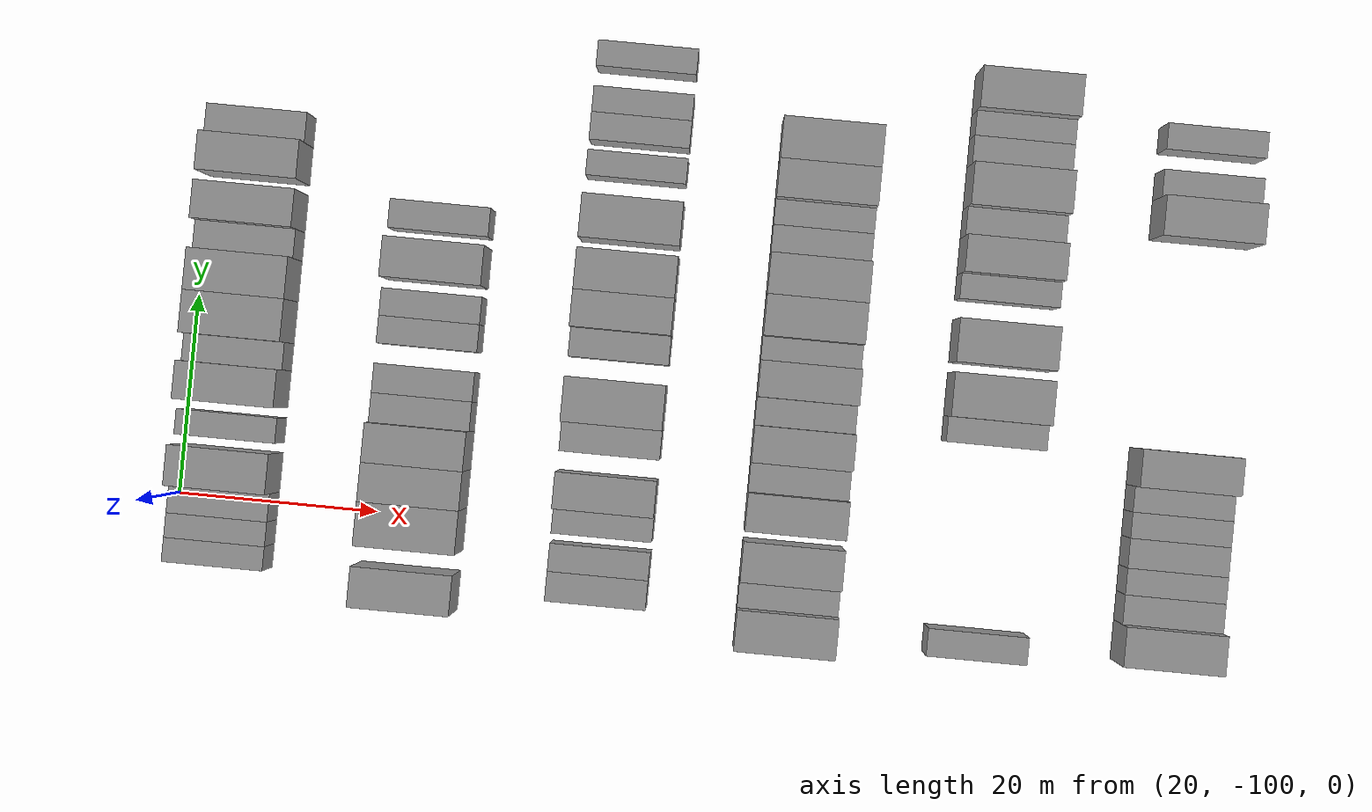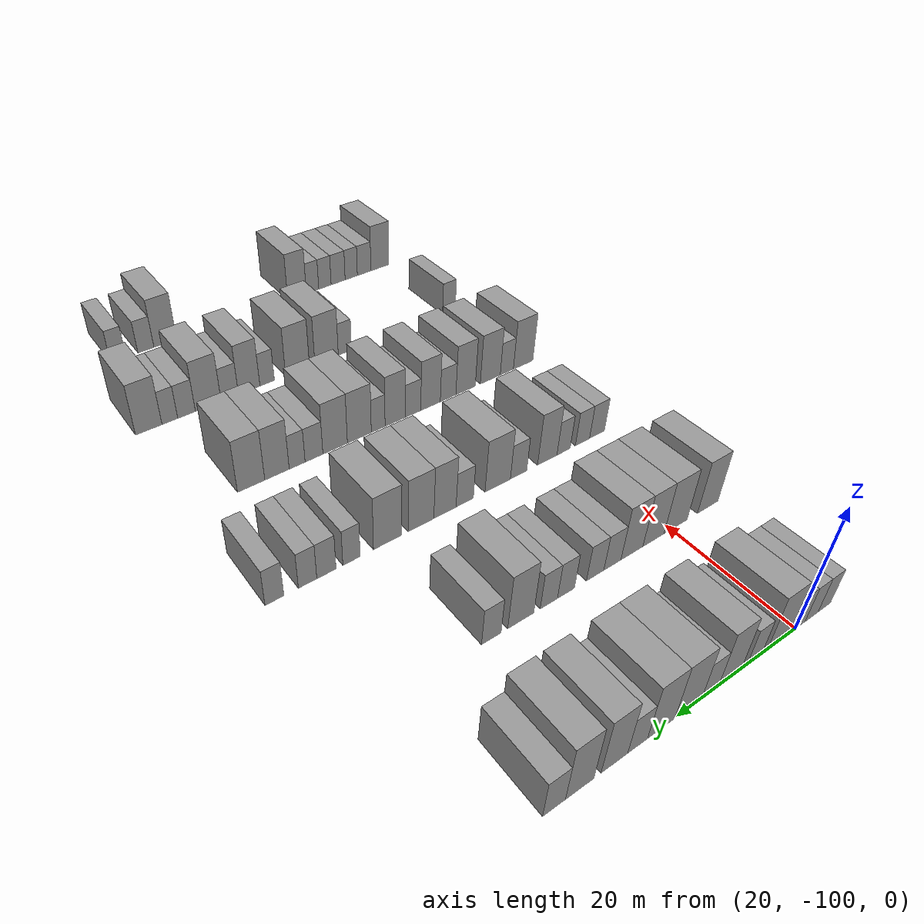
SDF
<sdf version="1.6">
 <world name="default">
  <model name="building_67">
   <static>1</static>
   <pose>25.0000 -105.3900 0 0.000000 0.000000 0.000000</pose>
   <link name="link">
    <pose>0 0 3.00 0 0 0</pose>
    <collision name="collision"><geometry><box><size>10.0000 2.4034 6.0000</size></box></geometry></collision>
    <visual name="visual">
     <cast_shadows>0</cast_shadows>
     <geometry><box><size>10.0000 2.4034 6.0000</size></box></geometry>
     <material>
      <script>
       <uri>model://grey_wall/materials/scripts</uri>
       <uri>model://grey_wall/materials/textures</uri>
       <name>vrc/grey_wall</name>
      </script>
     </material>
    </visual>
   </link>
  </model>
  <model name="building_68">
   <static>1</static>
   <pose>25.0000 -102.9690 0 0.000000 0.000000 0.000000</pose>
   <link name="link">
    <pose>0 0 3.00 0 0 0</pose>
    <collision name="collision"><geometry><box><size>10.0000 2.4385 6.0000</size></box></geometry></collision>
    <visual name="visual">
     <cast_shadows>0</cast_shadows>
     <geometry><box><size>10.0000 2.4385 6.0000</size></box></geometry>
     <material>
      <script>
       <uri>model://grey_wall/materials/scripts</uri>
       <uri>model://grey_wall/materials/textures</uri>
       <name>vrc/grey_wall</name>
      </script>
     </material>
    </visual>
   </link>
  </model>
  <model name="building_69">
   <static>1</static>
   <pose>25.0000 -100.3519 0 0.000000 0.000000 0.000000</pose>
   <link name="link">
    <pose>0 0 3.00 0 0 0</pose>
    <collision name="collision"><geometry><box><size>10.0000 2.7957 6.0000</size></box></geometry></collision>
    <visual name="visual">
     <cast_shadows>0</cast_shadows>
     <geometry><box><size>10.0000 2.7957 6.0000</size></box></geometry>
     <material>
      <script>
       <uri>model://grey_wall/materials/scripts</uri>
       <uri>model://grey_wall/materials/textures</uri>
       <name>vrc/grey_wall</name>
      </script>
     </material>
    </visual>
   </link>
  </model>
  <model name="building_70">
   <static>1</static>
   <pose>25.0000 -96.9507 0 0.000000 0.000000 0.000000</pose>
   <link name="link">
    <pose>0 0 4.50 0 0 0</pose>
    <collision name="collision"><geometry><box><size>10.0000 4.0066 9.0000</size></box></geometry></collision>
    <visual name="visual">
     <cast_shadows>0</cast_shadows>
     <geometry><box><size>10.0000 4.0066 9.0000</size></box></geometry>
     <material>
      <script>
       <uri>model://grey_wall/materials/scripts</uri>
       <uri>model://grey_wall/materials/textures</uri>
       <name>vrc/grey_wall</name>
      </script>
     </material>
    </visual>
   </link>
  </model>
  <model name="building_71">
   <static>1</static>
   <pose>25.0000 -92.6870 0 0.000000 0.000000 0.000000</pose>
   <link name="link">
    <pose>0 0 3.00 0 0 0</pose>
    <collision name="collision"><geometry><box><size>10.0000 2.5209 6.0000</size></box></geometry></collision>
    <visual name="visual">
     <cast_shadows>0</cast_shadows>
     <geometry><box><size>10.0000 2.5209 6.0000</size></box></geometry>
     <material>
      <script>
       <uri>model://grey_wall/materials/scripts</uri>
       <uri>model://grey_wall/materials/textures</uri>
       <name>vrc/grey_wall</name>
      </script>
     </material>
    </visual>
   </link>
  </model>
  <model name="building_72">
   <static>1</static>
   <pose>25.0000 -88.5406 0 0.000000 0.000000 0.000000</pose>
   <link name="link">
    <pose>0 0 4.50 0 0 0</pose>
    <collision name="collision"><geometry><box><size>10.0000 3.7719 9.0000</size></box></geometry></collision>
    <visual name="visual">
     <cast_shadows>0</cast_shadows>
     <geometry><box><size>10.0000 3.7719 9.0000</size></box></geometry>
     <material>
      <script>
       <uri>model://grey_wall/materials/scripts</uri>
       <uri>model://grey_wall/materials/textures</uri>
       <name>vrc/grey_wall</name>
      </script>
     </material>
    </visual>
   </link>
  </model>
  <model name="building_73">
   <static>1</static>
   <pose>25.0000 -85.2821 0 0.000000 0.000000 0.000000</pose>
   <link name="link">
    <pose>0 0 3.00 0 0 0</pose>
    <collision name="collision"><geometry><box><size>10.0000 2.7451 6.0000</size></box></geometry></collision>
    <visual name="visual">
     <cast_shadows>0</cast_shadows>
     <geometry><box><size>10.0000 2.7451 6.0000</size></box></geometry>
     <material>
      <script>
       <uri>model://grey_wall/materials/scripts</uri>
       <uri>model://grey_wall/materials/textures</uri>
       <name>vrc/grey_wall</name>
      </script>
     </material>
    </visual>
   </link>
  </model>
  <model name="building_74">
   <static>1</static>
   <pose>25.0000 -81.8021 0 0.000000 0.000000 0.000000</pose>
   <link name="link">
    <pose>0 0 4.50 0 0 0</pose>
    <collision name="collision"><geometry><box><size>10.0000 4.2150 9.0000</size></box></geometry></collision>
    <visual name="visual">
     <cast_shadows>0</cast_shadows>
     <geometry><box><size>10.0000 4.2150 9.0000</size></box></geometry>
     <material>
      <script>
       <uri>model://grey_wall/materials/scripts</uri>
       <uri>model://grey_wall/materials/textures</uri>
       <name>vrc/grey_wall</name>
      </script>
     </material>
    </visual>
   </link>
  </model>
  <model name="building_75">
   <static>1</static>
   <pose>25.0000 -77.6193 0 0.000000 0.000000 0.000000</pose>
   <link name="link">
    <pose>0 0 4.50 0 0 0</pose>
    <collision name="collision"><geometry><box><size>10.0000 4.1505 9.0000</size></box></geometry></collision>
    <visual name="visual">
     <cast_shadows>0</cast_shadows>
     <geometry><box><size>10.0000 4.1505 9.0000</size></box></geometry>
     <material>
      <script>
       <uri>model://grey_wall/materials/scripts</uri>
       <uri>model://grey_wall/materials/textures</uri>
       <name>vrc/grey_wall</name>
      </script>
     </material>
    </visual>
   </link>
  </model>
  <model name="building_76">
   <static>1</static>
   <pose>25.0000 -74.0915 0 0.000000 0.000000 0.000000</pose>
   <link name="link">
    <pose>0 0 3.00 0 0 0</pose>
    <collision name="collision"><geometry><box><size>10.0000 2.9051 6.0000</size></box></geometry></collision>
    <visual name="visual">
     <cast_shadows>0</cast_shadows>
     <geometry><box><size>10.0000 2.9051 6.0000</size></box></geometry>
     <material>
      <script>
       <uri>model://grey_wall/materials/scripts</uri>
       <uri>model://grey_wall/materials/textures</uri>
       <name>vrc/grey_wall</name>
      </script>
     </material>
    </visual>
   </link>
  </model>
  <model name="building_77">
   <static>1</static>
   <pose>25.0000 -70.7532 0 0.000000 0.000000 0.000000</pose>
   <link name="link">
    <pose>0 0 4.50 0 0 0</pose>
    <collision name="collision"><geometry><box><size>10.0000 3.7714 9.0000</size></box></geometry></collision>
    <visual name="visual">
     <cast_shadows>0</cast_shadows>
     <geometry><box><size>10.0000 3.7714 9.0000</size></box></geometry>
     <material>
      <script>
       <uri>model://grey_wall/materials/scripts</uri>
       <uri>model://grey_wall/materials/textures</uri>
       <name>vrc/grey_wall</name>
      </script>
     </material>
    </visual>
   </link>
  </model>
  <model name="building_78">
   <static>1</static>
   <pose>25.0000 -65.9466 0 0.000000 0.000000 0.000000</pose>
   <link name="link">
    <pose>0 0 4.50 0 0 0</pose>
    <collision name="collision"><geometry><box><size>10.0000 3.8419 9.0000</size></box></geometry></collision>
    <visual name="visual">
     <cast_shadows>0</cast_shadows>
     <geometry><box><size>10.0000 3.8419 9.0000</size></box></geometry>
     <material>
      <script>
       <uri>model://grey_wall/materials/scripts</uri>
       <uri>model://grey_wall/materials/textures</uri>
       <name>vrc/grey_wall</name>
      </script>
     </material>
    </visual>
   </link>
  </model>
  <model name="building_79">
   <static>1</static>
   <pose>25.0000 -62.5279 0 0.000000 0.000000 0.000000</pose>
   <link name="link">
    <pose>0 0 3.00 0 0 0</pose>
    <collision name="collision"><geometry><box><size>10.0000 2.9954 6.0000</size></box></geometry></collision>
    <visual name="visual">
     <cast_shadows>0</cast_shadows>
     <geometry><box><size>10.0000 2.9954 6.0000</size></box></geometry>
     <material>
      <script>
       <uri>model://grey_wall/materials/scripts</uri>
       <uri>model://grey_wall/materials/textures</uri>
       <name>vrc/grey_wall</name>
      </script>
     </material>
    </visual>
   </link>
  </model>
  <model name="building_234">
   <static>1</static>
   <pose>44.0000 -107.0728 0 0.000000 0.000000 0.000000</pose>
   <link name="link">
    <pose>0 0 4.50 0 0 0</pose>
    <collision name="collision"><geometry><box><size>10.0000 4.0145 9.0000</size></box></geometry></collision>
    <visual name="visual">
     <cast_shadows>0</cast_shadows>
     <geometry><box><size>10.0000 4.0145 9.0000</size></box></geometry>
     <material>
      <script>
       <uri>model://grey_wall/materials/scripts</uri>
       <uri>model://grey_wall/materials/textures</uri>
       <name>vrc/grey_wall</name>
      </script>
     </material>
    </visual>
   </link>
  </model>
  <model name="building_235">
   <static>1</static>
   <pose>44.0000 -100.8949 0 0.000000 0.000000 0.000000</pose>
   <link name="link">
    <pose>0 0 4.50 0 0 0</pose>
    <collision name="collision"><geometry><box><size>10.0000 4.3414 9.0000</size></box></geometry></collision>
    <visual name="visual">
     <cast_shadows>0</cast_shadows>
     <geometry><box><size>10.0000 4.3414 9.0000</size></box></geometry>
     <material>
      <script>
       <uri>model://grey_wall/materials/scripts</uri>
       <uri>model://grey_wall/materials/textures</uri>
       <name>vrc/grey_wall</name>
      </script>
     </material>
    </visual>
   </link>
  </model>
  <model name="building_236">
   <static>1</static>
   <pose>44.0000 -96.7959 0 0.000000 0.000000 0.000000</pose>
   <link name="link">
    <pose>0 0 4.50 0 0 0</pose>
    <collision name="collision"><geometry><box><size>10.0000 3.8564 9.0000</size></box></geometry></collision>
    <visual name="visual">
     <cast_shadows>0</cast_shadows>
     <geometry><box><size>10.0000 3.8564 9.0000</size></box></geometry>
     <material>
      <script>
       <uri>model://grey_wall/materials/scripts</uri>
       <uri>model://grey_wall/materials/textures</uri>
       <name>vrc/grey_wall</name>
      </script>
     </material>
    </visual>
   </link>
  </model>
  <model name="building_237">
   <static>1</static>
   <pose>44.0000 -92.9147 0 0.000000 0.000000 0.000000</pose>
   <link name="link">
    <pose>0 0 4.50 0 0 0</pose>
    <collision name="collision"><geometry><box><size>10.0000 3.9060 9.0000</size></box></geometry></collision>
    <visual name="visual">
     <cast_shadows>0</cast_shadows>
     <geometry><box><size>10.0000 3.9060 9.0000</size></box></geometry>
     <material>
      <script>
       <uri>model://grey_wall/materials/scripts</uri>
       <uri>model://grey_wall/materials/textures</uri>
       <name>vrc/grey_wall</name>
      </script>
     </material>
    </visual>
   </link>
  </model>
  <model name="building_238">
   <static>1</static>
   <pose>44.0000 -89.4872 0 0.000000 0.000000 0.000000</pose>
   <link name="link">
    <pose>0 0 3.00 0 0 0</pose>
    <collision name="collision"><geometry><box><size>10.0000 2.9491 6.0000</size></box></geometry></collision>
    <visual name="visual">
     <cast_shadows>0</cast_shadows>
     <geometry><box><size>10.0000 2.9491 6.0000</size></box></geometry>
     <material>
      <script>
       <uri>model://grey_wall/materials/scripts</uri>
       <uri>model://grey_wall/materials/textures</uri>
       <name>vrc/grey_wall</name>
      </script>
     </material>
    </visual>
   </link>
  </model>
  <model name="building_239">
   <static>1</static>
   <pose>44.0000 -86.5484 0 0.000000 0.000000 0.000000</pose>
   <link name="link">
    <pose>0 0 3.00 0 0 0</pose>
    <collision name="collision"><geometry><box><size>10.0000 2.9286 6.0000</size></box></geometry></collision>
    <visual name="visual">
     <cast_shadows>0</cast_shadows>
     <geometry><box><size>10.0000 2.9286 6.0000</size></box></geometry>
     <material>
      <script>
       <uri>model://grey_wall/materials/scripts</uri>
       <uri>model://grey_wall/materials/textures</uri>
       <name>vrc/grey_wall</name>
      </script>
     </material>
    </visual>
   </link>
  </model>
  <model name="building_240">
   <static>1</static>
   <pose>44.0000 -81.7106 0 0.000000 0.000000 0.000000</pose>
   <link name="link">
    <pose>0 0 3.00 0 0 0</pose>
    <collision name="collision"><geometry><box><size>10.0000 2.7469 6.0000</size></box></geometry></collision>
    <visual name="visual">
     <cast_shadows>0</cast_shadows>
     <geometry><box><size>10.0000 2.7469 6.0000</size></box></geometry>
     <material>
      <script>
       <uri>model://grey_wall/materials/scripts</uri>
       <uri>model://grey_wall/materials/textures</uri>
       <name>vrc/grey_wall</name>
      </script>
     </material>
    </visual>
   </link>
  </model>
  <model name="building_241">
   <static>1</static>
   <pose>44.0000 -78.9650 0 0.000000 0.000000 0.000000</pose>
   <link name="link">
    <pose>0 0 3.00 0 0 0</pose>
    <collision name="collision"><geometry><box><size>10.0000 2.7444 6.0000</size></box></geometry></collision>
    <visual name="visual">
     <cast_shadows>0</cast_shadows>
     <geometry><box><size>10.0000 2.7444 6.0000</size></box></geometry>
     <material>
      <script>
       <uri>model://grey_wall/materials/scripts</uri>
       <uri>model://grey_wall/materials/textures</uri>
       <name>vrc/grey_wall</name>
      </script>
     </material>
    </visual>
   </link>
  </model>
  <model name="building_242">
   <static>1</static>
   <pose>44.0000 -74.5951 0 0.000000 0.000000 0.000000</pose>
   <link name="link">
    <pose>0 0 4.50 0 0 0</pose>
    <collision name="collision"><geometry><box><size>10.0000 3.9955 9.0000</size></box></geometry></collision>
    <visual name="visual">
     <cast_shadows>0</cast_shadows>
     <geometry><box><size>10.0000 3.9955 9.0000</size></box></geometry>
     <material>
      <script>
       <uri>model://grey_wall/materials/scripts</uri>
       <uri>model://grey_wall/materials/textures</uri>
       <name>vrc/grey_wall</name>
      </script>
     </material>
    </visual>
   </link>
  </model>
  <model name="building_243">
   <static>1</static>
   <pose>44.0000 -70.1585 0 0.000000 0.000000 0.000000</pose>
   <link name="link">
    <pose>0 0 3.00 0 0 0</pose>
    <collision name="collision"><geometry><box><size>10.0000 2.8778 6.0000</size></box></geometry></collision>
    <visual name="visual">
     <cast_shadows>0</cast_shadows>
     <geometry><box><size>10.0000 2.8778 6.0000</size></box></geometry>
     <material>
      <script>
       <uri>model://grey_wall/materials/scripts</uri>
       <uri>model://grey_wall/materials/textures</uri>
       <name>vrc/grey_wall</name>
      </script>
     </material>
    </visual>
   </link>
  </model>
  <model name="building_396">
   <static>1</static>
   <pose>63.0000 -105.3975 0 0.000000 0.000000 0.000000</pose>
   <link name="link">
    <pose>0 0 3.00 0 0 0</pose>
    <collision name="collision"><geometry><box><size>10.0000 2.9464 6.0000</size></box></geometry></collision>
    <visual name="visual">
     <cast_shadows>0</cast_shadows>
     <geometry><box><size>10.0000 2.9464 6.0000</size></box></geometry>
     <material>
      <script>
       <uri>model://grey_wall/materials/scripts</uri>
       <uri>model://grey_wall/materials/textures</uri>
       <name>vrc/grey_wall</name>
      </script>
     </material>
    </visual>
   </link>
  </model>
  <model name="building_397">
   <static>1</static>
   <pose>63.0000 -102.5312 0 0.000000 0.000000 0.000000</pose>
   <link name="link">
    <pose>0 0 3.00 0 0 0</pose>
    <collision name="collision"><geometry><box><size>10.0000 2.7861 6.0000</size></box></geometry></collision>
    <visual name="visual">
     <cast_shadows>0</cast_shadows>
     <geometry><box><size>10.0000 2.7861 6.0000</size></box></geometry>
     <material>
      <script>
       <uri>model://grey_wall/materials/scripts</uri>
       <uri>model://grey_wall/materials/textures</uri>
       <name>vrc/grey_wall</name>
      </script>
     </material>
    </visual>
   </link>
  </model>
  <model name="building_398">
   <static>1</static>
   <pose>63.0000 -98.8743 0 0.000000 0.000000 0.000000</pose>
   <link name="link">
    <pose>0 0 3.00 0 0 0</pose>
    <collision name="collision"><geometry><box><size>10.0000 2.5277 6.0000</size></box></geometry></collision>
    <visual name="visual">
     <cast_shadows>0</cast_shadows>
     <geometry><box><size>10.0000 2.5277 6.0000</size></box></geometry>
     <material>
      <script>
       <uri>model://grey_wall/materials/scripts</uri>
       <uri>model://grey_wall/materials/textures</uri>
       <name>vrc/grey_wall</name>
      </script>
     </material>
    </visual>
   </link>
  </model>
  <model name="building_399">
   <static>1</static>
   <pose>63.0000 -95.7951 0 0.000000 0.000000 0.000000</pose>
   <link name="link">
    <pose>0 0 4.50 0 0 0</pose>
    <collision name="collision"><geometry><box><size>10.0000 3.6306 9.0000</size></box></geometry></collision>
    <visual name="visual">
     <cast_shadows>0</cast_shadows>
     <geometry><box><size>10.0000 3.6306 9.0000</size></box></geometry>
     <material>
      <script>
       <uri>model://grey_wall/materials/scripts</uri>
       <uri>model://grey_wall/materials/textures</uri>
       <name>vrc/grey_wall</name>
      </script>
     </material>
    </visual>
   </link>
  </model>
  <model name="building_400">
   <static>1</static>
   <pose>63.0000 -90.5098 0 0.000000 0.000000 0.000000</pose>
   <link name="link">
    <pose>0 0 3.00 0 0 0</pose>
    <collision name="collision"><geometry><box><size>10.0000 2.9401 6.0000</size></box></geometry></collision>
    <visual name="visual">
     <cast_shadows>0</cast_shadows>
     <geometry><box><size>10.0000 2.9401 6.0000</size></box></geometry>
     <material>
      <script>
       <uri>model://grey_wall/materials/scripts</uri>
       <uri>model://grey_wall/materials/textures</uri>
       <name>vrc/grey_wall</name>
      </script>
     </material>
    </visual>
   </link>
  </model>
  <model name="building_401">
   <static>1</static>
   <pose>63.0000 -86.8113 0 0.000000 0.000000 0.000000</pose>
   <link name="link">
    <pose>0 0 4.50 0 0 0</pose>
    <collision name="collision"><geometry><box><size>10.0000 4.4569 9.0000</size></box></geometry></collision>
    <visual name="visual">
     <cast_shadows>0</cast_shadows>
     <geometry><box><size>10.0000 4.4569 9.0000</size></box></geometry>
     <material>
      <script>
       <uri>model://grey_wall/materials/scripts</uri>
       <uri>model://grey_wall/materials/textures</uri>
       <name>vrc/grey_wall</name>
      </script>
     </material>
    </visual>
   </link>
  </model>
  <model name="building_402">
   <static>1</static>
   <pose>63.0000 -81.1262 0 0.000000 0.000000 0.000000</pose>
   <link name="link">
    <pose>0 0 3.00 0 0 0</pose>
    <collision name="collision"><geometry><box><size>10.0000 2.9134 6.0000</size></box></geometry></collision>
    <visual name="visual">
     <cast_shadows>0</cast_shadows>
     <geometry><box><size>10.0000 2.9134 6.0000</size></box></geometry>
     <material>
      <script>
       <uri>model://grey_wall/materials/scripts</uri>
       <uri>model://grey_wall/materials/textures</uri>
       <name>vrc/grey_wall</name>
      </script>
     </material>
    </visual>
   </link>
  </model>
  <model name="building_403">
   <static>1</static>
   <pose>63.0000 -77.8367 0 0.000000 0.000000 0.000000</pose>
   <link name="link">
    <pose>0 0 4.50 0 0 0</pose>
    <collision name="collision"><geometry><box><size>10.0000 3.6655 9.0000</size></box></geometry></collision>
    <visual name="visual">
     <cast_shadows>0</cast_shadows>
     <geometry><box><size>10.0000 3.6655 9.0000</size></box></geometry>
     <material>
      <script>
       <uri>model://grey_wall/materials/scripts</uri>
       <uri>model://grey_wall/materials/textures</uri>
       <name>vrc/grey_wall</name>
      </script>
     </material>
    </visual>
   </link>
  </model>
  <model name="building_404">
   <static>1</static>
   <pose>63.0000 -73.9444 0 0.000000 0.000000 0.000000</pose>
   <link name="link">
    <pose>0 0 4.50 0 0 0</pose>
    <collision name="collision"><geometry><box><size>10.0000 4.1192 9.0000</size></box></geometry></collision>
    <visual name="visual">
     <cast_shadows>0</cast_shadows>
     <geometry><box><size>10.0000 4.1192 9.0000</size></box></geometry>
     <material>
      <script>
       <uri>model://grey_wall/materials/scripts</uri>
       <uri>model://grey_wall/materials/textures</uri>
       <name>vrc/grey_wall</name>
      </script>
     </material>
    </visual>
   </link>
  </model>
  <model name="building_405">
   <static>1</static>
   <pose>63.0000 -68.7126 0 0.000000 0.000000 0.000000</pose>
   <link name="link">
    <pose>0 0 4.50 0 0 0</pose>
    <collision name="collision"><geometry><box><size>10.0000 4.3445 9.0000</size></box></geometry></collision>
    <visual name="visual">
     <cast_shadows>0</cast_shadows>
     <geometry><box><size>10.0000 4.3445 9.0000</size></box></geometry>
     <material>
      <script>
       <uri>model://grey_wall/materials/scripts</uri>
       <uri>model://grey_wall/materials/textures</uri>
       <name>vrc/grey_wall</name>
      </script>
     </material>
    </visual>
   </link>
  </model>
  <model name="building_406">
   <static>1</static>
   <pose>63.0000 -63.2694 0 0.000000 0.000000 0.000000</pose>
   <link name="link">
    <pose>0 0 3.00 0 0 0</pose>
    <collision name="collision"><geometry><box><size>10.0000 2.5420 6.0000</size></box></geometry></collision>
    <visual name="visual">
     <cast_shadows>0</cast_shadows>
     <geometry><box><size>10.0000 2.5420 6.0000</size></box></geometry>
     <material>
      <script>
       <uri>model://grey_wall/materials/scripts</uri>
       <uri>model://grey_wall/materials/textures</uri>
       <name>vrc/grey_wall</name>
      </script>
     </material>
    </visual>
   </link>
  </model>
  <model name="building_407">
   <static>1</static>
   <pose>63.0000 -59.6215 0 0.000000 0.000000 0.000000</pose>
   <link name="link">
    <pose>0 0 3.00 0 0 0</pose>
    <collision name="collision"><geometry><box><size>10.0000 2.7538 6.0000</size></box></geometry></collision>
    <visual name="visual">
     <cast_shadows>0</cast_shadows>
     <geometry><box><size>10.0000 2.7538 6.0000</size></box></geometry>
     <material>
      <script>
       <uri>model://grey_wall/materials/scripts</uri>
       <uri>model://grey_wall/materials/textures</uri>
       <name>vrc/grey_wall</name>
      </script>
     </material>
    </visual>
   </link>
  </model>
  <model name="building_408">
   <static>1</static>
   <pose>63.0000 -56.9504 0 0.000000 0.000000 0.000000</pose>
   <link name="link">
    <pose>0 0 3.00 0 0 0</pose>
    <collision name="collision"><geometry><box><size>10.0000 2.5882 6.0000</size></box></geometry></collision>
    <visual name="visual">
     <cast_shadows>0</cast_shadows>
     <geometry><box><size>10.0000 2.5882 6.0000</size></box></geometry>
     <material>
      <script>
       <uri>model://grey_wall/materials/scripts</uri>
       <uri>model://grey_wall/materials/textures</uri>
       <name>vrc/grey_wall</name>
      </script>
     </material>
    </visual>
   </link>
  </model>
  <model name="building_409">
   <static>1</static>
   <pose>63.0000 -52.3751 0 0.000000 0.000000 0.000000</pose>
   <link name="link">
    <pose>0 0 3.00 0 0 0</pose>
    <collision name="collision"><geometry><box><size>10.0000 2.5624 6.0000</size></box></geometry></collision>
    <visual name="visual">
     <cast_shadows>0</cast_shadows>
     <geometry><box><size>10.0000 2.5624 6.0000</size></box></geometry>
     <material>
      <script>
       <uri>model://grey_wall/materials/scripts</uri>
       <uri>model://grey_wall/materials/textures</uri>
       <name>vrc/grey_wall</name>
      </script>
     </material>
    </visual>
   </link>
  </model>
  <model name="building_574">
   <static>1</static>
   <pose>82.0000 -107.7302 0 0.000000 0.000000 0.000000</pose>
   <link name="link">
    <pose>0 0 4.50 0 0 0</pose>
    <collision name="collision"><geometry><box><size>10.0000 4.0585 9.0000</size></box></geometry></collision>
    <visual name="visual">
     <cast_shadows>0</cast_shadows>
     <geometry><box><size>10.0000 4.0585 9.0000</size></box></geometry>
     <material>
      <script>
       <uri>model://grey_wall/materials/scripts</uri>
       <uri>model://grey_wall/materials/textures</uri>
       <name>vrc/grey_wall</name>
      </script>
     </material>
    </visual>
   </link>
  </model>
  <model name="building_575">
   <static>1</static>
   <pose>82.0000 -104.3540 0 0.000000 0.000000 0.000000</pose>
   <link name="link">
    <pose>0 0 3.00 0 0 0</pose>
    <collision name="collision"><geometry><box><size>10.0000 2.6939 6.0000</size></box></geometry></collision>
    <visual name="visual">
     <cast_shadows>0</cast_shadows>
     <geometry><box><size>10.0000 2.6939 6.0000</size></box></geometry>
     <material>
      <script>
       <uri>model://grey_wall/materials/scripts</uri>
       <uri>model://grey_wall/materials/textures</uri>
       <name>vrc/grey_wall</name>
      </script>
     </material>
    </visual>
   </link>
  </model>
  <model name="building_576">
   <static>1</static>
   <pose>82.0000 -101.0082 0 0.000000 0.000000 0.000000</pose>
   <link name="link">
    <pose>0 0 4.50 0 0 0</pose>
    <collision name="collision"><geometry><box><size>10.0000 3.9977 9.0000</size></box></geometry></collision>
    <visual name="visual">
     <cast_shadows>0</cast_shadows>
     <geometry><box><size>10.0000 3.9977 9.0000</size></box></geometry>
     <material>
      <script>
       <uri>model://grey_wall/materials/scripts</uri>
       <uri>model://grey_wall/materials/textures</uri>
       <name>vrc/grey_wall</name>
      </script>
     </material>
    </visual>
   </link>
  </model>
  <model name="building_577">
   <static>1</static>
   <pose>82.0000 -96.1224 0 0.000000 0.000000 0.000000</pose>
   <link name="link">
    <pose>0 0 4.50 0 0 0</pose>
    <collision name="collision"><geometry><box><size>10.0000 3.7740 9.0000</size></box></geometry></collision>
    <visual name="visual">
     <cast_shadows>0</cast_shadows>
     <geometry><box><size>10.0000 3.7740 9.0000</size></box></geometry>
     <material>
      <script>
       <uri>model://grey_wall/materials/scripts</uri>
       <uri>model://grey_wall/materials/textures</uri>
       <name>vrc/grey_wall</name>
      </script>
     </material>
    </visual>
   </link>
  </model>
  <model name="building_578">
   <static>1</static>
   <pose>82.0000 -92.7496 0 0.000000 0.000000 0.000000</pose>
   <link name="link">
    <pose>0 0 3.00 0 0 0</pose>
    <collision name="collision"><geometry><box><size>10.0000 2.9716 6.0000</size></box></geometry></collision>
    <visual name="visual">
     <cast_shadows>0</cast_shadows>
     <geometry><box><size>10.0000 2.9716 6.0000</size></box></geometry>
     <material>
      <script>
       <uri>model://grey_wall/materials/scripts</uri>
       <uri>model://grey_wall/materials/textures</uri>
       <name>vrc/grey_wall</name>
      </script>
     </material>
    </visual>
   </link>
  </model>
  <model name="building_579">
   <static>1</static>
   <pose>82.0000 -89.4335 0 0.000000 0.000000 0.000000</pose>
   <link name="link">
    <pose>0 0 4.50 0 0 0</pose>
    <collision name="collision"><geometry><box><size>10.0000 3.6606 9.0000</size></box></geometry></collision>
    <visual name="visual">
     <cast_shadows>0</cast_shadows>
     <geometry><box><size>10.0000 3.6606 9.0000</size></box></geometry>
     <material>
      <script>
       <uri>model://grey_wall/materials/scripts</uri>
       <uri>model://grey_wall/materials/textures</uri>
       <name>vrc/grey_wall</name>
      </script>
     </material>
    </visual>
   </link>
  </model>
  <model name="building_580">
   <static>1</static>
   <pose>82.0000 -86.1973 0 0.000000 0.000000 0.000000</pose>
   <link name="link">
    <pose>0 0 3.00 0 0 0</pose>
    <collision name="collision"><geometry><box><size>10.0000 2.8118 6.0000</size></box></geometry></collision>
    <visual name="visual">
     <cast_shadows>0</cast_shadows>
     <geometry><box><size>10.0000 2.8118 6.0000</size></box></geometry>
     <material>
      <script>
       <uri>model://grey_wall/materials/scripts</uri>
       <uri>model://grey_wall/materials/textures</uri>
       <name>vrc/grey_wall</name>
      </script>
     </material>
    </visual>
   </link>
  </model>
  <model name="building_581">
   <static>1</static>
   <pose>82.0000 -82.9815 0 0.000000 0.000000 0.000000</pose>
   <link name="link">
    <pose>0 0 4.50 0 0 0</pose>
    <collision name="collision"><geometry><box><size>10.0000 3.6198 9.0000</size></box></geometry></collision>
    <visual name="visual">
     <cast_shadows>0</cast_shadows>
     <geometry><box><size>10.0000 3.6198 9.0000</size></box></geometry>
     <material>
      <script>
       <uri>model://grey_wall/materials/scripts</uri>
       <uri>model://grey_wall/materials/textures</uri>
       <name>vrc/grey_wall</name>
      </script>
     </material>
    </visual>
   </link>
  </model>
  <model name="building_582">
   <static>1</static>
   <pose>82.0000 -79.9645 0 0.000000 0.000000 0.000000</pose>
   <link name="link">
    <pose>0 0 3.00 0 0 0</pose>
    <collision name="collision"><geometry><box><size>10.0000 2.4142 6.0000</size></box></geometry></collision>
    <visual name="visual">
     <cast_shadows>0</cast_shadows>
     <geometry><box><size>10.0000 2.4142 6.0000</size></box></geometry>
     <material>
      <script>
       <uri>model://grey_wall/materials/scripts</uri>
       <uri>model://grey_wall/materials/textures</uri>
       <name>vrc/grey_wall</name>
      </script>
     </material>
    </visual>
   </link>
  </model>
  <model name="building_583">
   <static>1</static>
   <pose>82.0000 -76.7062 0 0.000000 0.000000 0.000000</pose>
   <link name="link">
    <pose>0 0 4.50 0 0 0</pose>
    <collision name="collision"><geometry><box><size>10.0000 4.1023 9.0000</size></box></geometry></collision>
    <visual name="visual">
     <cast_shadows>0</cast_shadows>
     <geometry><box><size>10.0000 4.1023 9.0000</size></box></geometry>
     <material>
      <script>
       <uri>model://grey_wall/materials/scripts</uri>
       <uri>model://grey_wall/materials/textures</uri>
       <name>vrc/grey_wall</name>
      </script>
     </material>
    </visual>
   </link>
  </model>
  <model name="building_584">
   <static>1</static>
   <pose>82.0000 -72.6085 0 0.000000 0.000000 0.000000</pose>
   <link name="link">
    <pose>0 0 4.50 0 0 0</pose>
    <collision name="collision"><geometry><box><size>10.0000 4.0931 9.0000</size></box></geometry></collision>
    <visual name="visual">
     <cast_shadows>0</cast_shadows>
     <geometry><box><size>10.0000 4.0931 9.0000</size></box></geometry>
     <material>
      <script>
       <uri>model://grey_wall/materials/scripts</uri>
       <uri>model://grey_wall/materials/textures</uri>
       <name>vrc/grey_wall</name>
      </script>
     </material>
    </visual>
   </link>
  </model>
  <model name="building_585">
   <static>1</static>
   <pose>82.0000 -69.1121 0 0.000000 0.000000 0.000000</pose>
   <link name="link">
    <pose>0 0 3.00 0 0 0</pose>
    <collision name="collision"><geometry><box><size>10.0000 2.8999 6.0000</size></box></geometry></collision>
    <visual name="visual">
     <cast_shadows>0</cast_shadows>
     <geometry><box><size>10.0000 2.8999 6.0000</size></box></geometry>
     <material>
      <script>
       <uri>model://grey_wall/materials/scripts</uri>
       <uri>model://grey_wall/materials/textures</uri>
       <name>vrc/grey_wall</name>
      </script>
     </material>
    </visual>
   </link>
  </model>
  <model name="building_586">
   <static>1</static>
   <pose>82.0000 -66.3932 0 0.000000 0.000000 0.000000</pose>
   <link name="link">
    <pose>0 0 3.00 0 0 0</pose>
    <collision name="collision"><geometry><box><size>10.0000 2.5379 6.0000</size></box></geometry></collision>
    <visual name="visual">
     <cast_shadows>0</cast_shadows>
     <geometry><box><size>10.0000 2.5379 6.0000</size></box></geometry>
     <material>
      <script>
       <uri>model://grey_wall/materials/scripts</uri>
       <uri>model://grey_wall/materials/textures</uri>
       <name>vrc/grey_wall</name>
      </script>
     </material>
    </visual>
   </link>
  </model>
  <model name="building_587">
   <static>1</static>
   <pose>82.0000 -63.2085 0 0.000000 0.000000 0.000000</pose>
   <link name="link">
    <pose>0 0 4.50 0 0 0</pose>
    <collision name="collision"><geometry><box><size>10.0000 3.8314 9.0000</size></box></geometry></collision>
    <visual name="visual">
     <cast_shadows>0</cast_shadows>
     <geometry><box><size>10.0000 3.8314 9.0000</size></box></geometry>
     <material>
      <script>
       <uri>model://grey_wall/materials/scripts</uri>
       <uri>model://grey_wall/materials/textures</uri>
       <name>vrc/grey_wall</name>
      </script>
     </material>
    </visual>
   </link>
  </model>
  <model name="building_588">
   <static>1</static>
   <pose>82.0000 -59.2131 0 0.000000 0.000000 0.000000</pose>
   <link name="link">
    <pose>0 0 4.50 0 0 0</pose>
    <collision name="collision"><geometry><box><size>10.0000 4.1595 9.0000</size></box></geometry></collision>
    <visual name="visual">
     <cast_shadows>0</cast_shadows>
     <geometry><box><size>10.0000 4.1595 9.0000</size></box></geometry>
     <material>
      <script>
       <uri>model://grey_wall/materials/scripts</uri>
       <uri>model://grey_wall/materials/textures</uri>
       <name>vrc/grey_wall</name>
      </script>
     </material>
    </visual>
   </link>
  </model>
  <model name="building_747">
   <static>1</static>
   <pose>101.0000 -107.3086 0 0.000000 0.000000 0.000000</pose>
   <link name="link">
    <pose>0 0 3.00 0 0 0</pose>
    <collision name="collision"><geometry><box><size>10.0000 2.7430 6.0000</size></box></geometry></collision>
    <visual name="visual">
     <cast_shadows>0</cast_shadows>
     <geometry><box><size>10.0000 2.7430 6.0000</size></box></geometry>
     <material>
      <script>
       <uri>model://grey_wall/materials/scripts</uri>
       <uri>model://grey_wall/materials/textures</uri>
       <name>vrc/grey_wall</name>
      </script>
     </material>
    </visual>
   </link>
  </model>
  <model name="building_748">
   <static>1</static>
   <pose>101.0000 -86.1704 0 0.000000 0.000000 0.000000</pose>
   <link name="link">
    <pose>0 0 3.00 0 0 0</pose>
    <collision name="collision"><geometry><box><size>10.0000 2.5112 6.0000</size></box></geometry></collision>
    <visual name="visual">
     <cast_shadows>0</cast_shadows>
     <geometry><box><size>10.0000 2.5112 6.0000</size></box></geometry>
     <material>
      <script>
       <uri>model://grey_wall/materials/scripts</uri>
       <uri>model://grey_wall/materials/textures</uri>
       <name>vrc/grey_wall</name>
      </script>
     </material>
    </visual>
   </link>
  </model>
  <model name="building_749">
   <static>1</static>
   <pose>101.0000 -82.7253 0 0.000000 0.000000 0.000000</pose>
   <link name="link">
    <pose>0 0 4.50 0 0 0</pose>
    <collision name="collision"><geometry><box><size>10.0000 4.3790 9.0000</size></box></geometry></collision>
    <visual name="visual">
     <cast_shadows>0</cast_shadows>
     <geometry><box><size>10.0000 4.3790 9.0000</size></box></geometry>
     <material>
      <script>
       <uri>model://grey_wall/materials/scripts</uri>
       <uri>model://grey_wall/materials/textures</uri>
       <name>vrc/grey_wall</name>
      </script>
     </material>
    </visual>
   </link>
  </model>
  <model name="building_750">
   <static>1</static>
   <pose>101.0000 -77.3717 0 0.000000 0.000000 0.000000</pose>
   <link name="link">
    <pose>0 0 4.50 0 0 0</pose>
    <collision name="collision"><geometry><box><size>10.0000 4.3282 9.0000</size></box></geometry></collision>
    <visual name="visual">
     <cast_shadows>0</cast_shadows>
     <geometry><box><size>10.0000 4.3282 9.0000</size></box></geometry>
     <material>
      <script>
       <uri>model://grey_wall/materials/scripts</uri>
       <uri>model://grey_wall/materials/textures</uri>
       <name>vrc/grey_wall</name>
      </script>
     </material>
    </visual>
   </link>
  </model>
  <model name="building_751">
   <static>1</static>
   <pose>101.0000 -71.9371 0 0.000000 0.000000 0.000000</pose>
   <link name="link">
    <pose>0 0 3.00 0 0 0</pose>
    <collision name="collision"><geometry><box><size>10.0000 2.5411 6.0000</size></box></geometry></collision>
    <visual name="visual">
     <cast_shadows>0</cast_shadows>
     <geometry><box><size>10.0000 2.5411 6.0000</size></box></geometry>
     <material>
      <script>
       <uri>model://grey_wall/materials/scripts</uri>
       <uri>model://grey_wall/materials/textures</uri>
       <name>vrc/grey_wall</name>
      </script>
     </material>
    </visual>
   </link>
  </model>
  <model name="building_752">
   <static>1</static>
   <pose>101.0000 -68.8232 0 0.000000 0.000000 0.000000</pose>
   <link name="link">
    <pose>0 0 4.50 0 0 0</pose>
    <collision name="collision"><geometry><box><size>10.0000 3.6865 9.0000</size></box></geometry></collision>
    <visual name="visual">
     <cast_shadows>0</cast_shadows>
     <geometry><box><size>10.0000 3.6865 9.0000</size></box></geometry>
     <material>
      <script>
       <uri>model://grey_wall/materials/scripts</uri>
       <uri>model://grey_wall/materials/textures</uri>
       <name>vrc/grey_wall</name>
      </script>
     </material>
    </visual>
   </link>
  </model>
  <model name="building_753">
   <static>1</static>
   <pose>101.0000 -65.5203 0 0.000000 0.000000 0.000000</pose>
   <link name="link">
    <pose>0 0 3.00 0 0 0</pose>
    <collision name="collision"><geometry><box><size>10.0000 2.9194 6.0000</size></box></geometry></collision>
    <visual name="visual">
     <cast_shadows>0</cast_shadows>
     <geometry><box><size>10.0000 2.9194 6.0000</size></box></geometry>
     <material>
      <script>
       <uri>model://grey_wall/materials/scripts</uri>
       <uri>model://grey_wall/materials/textures</uri>
       <name>vrc/grey_wall</name>
      </script>
     </material>
    </visual>
   </link>
  </model>
  <model name="building_754">
   <static>1</static>
   <pose>101.0000 -61.9426 0 0.000000 0.000000 0.000000</pose>
   <link name="link">
    <pose>0 0 4.50 0 0 0</pose>
    <collision name="collision"><geometry><box><size>10.0000 4.2359 9.0000</size></box></geometry></collision>
    <visual name="visual">
     <cast_shadows>0</cast_shadows>
     <geometry><box><size>10.0000 4.2359 9.0000</size></box></geometry>
     <material>
      <script>
       <uri>model://grey_wall/materials/scripts</uri>
       <uri>model://grey_wall/materials/textures</uri>
       <name>vrc/grey_wall</name>
      </script>
     </material>
    </visual>
   </link>
  </model>
  <model name="building_755">
   <static>1</static>
   <pose>101.0000 -58.4001 0 0.000000 0.000000 0.000000</pose>
   <link name="link">
    <pose>0 0 3.00 0 0 0</pose>
    <collision name="collision"><geometry><box><size>10.0000 2.8492 6.0000</size></box></geometry></collision>
    <visual name="visual">
     <cast_shadows>0</cast_shadows>
     <geometry><box><size>10.0000 2.8492 6.0000</size></box></geometry>
     <material>
      <script>
       <uri>model://grey_wall/materials/scripts</uri>
       <uri>model://grey_wall/materials/textures</uri>
       <name>vrc/grey_wall</name>
      </script>
     </material>
    </visual>
   </link>
  </model>
  <model name="building_756">
   <static>1</static>
   <pose>101.0000 -55.7331 0 0.000000 0.000000 0.000000</pose>
   <link name="link">
    <pose>0 0 3.00 0 0 0</pose>
    <collision name="collision"><geometry><box><size>10.0000 2.4847 6.0000</size></box></geometry></collision>
    <visual name="visual">
     <cast_shadows>0</cast_shadows>
     <geometry><box><size>10.0000 2.4847 6.0000</size></box></geometry>
     <material>
      <script>
       <uri>model://grey_wall/materials/scripts</uri>
       <uri>model://grey_wall/materials/textures</uri>
       <name>vrc/grey_wall</name>
      </script>
     </material>
    </visual>
   </link>
  </model>
  <model name="building_757">
   <static>1</static>
   <pose>101.0000 -52.4357 0 0.000000 0.000000 0.000000</pose>
   <link name="link">
    <pose>0 0 4.50 0 0 0</pose>
    <collision name="collision"><geometry><box><size>10.0000 4.1102 9.0000</size></box></geometry></collision>
    <visual name="visual">
     <cast_shadows>0</cast_shadows>
     <geometry><box><size>10.0000 4.1102 9.0000</size></box></geometry>
     <material>
      <script>
       <uri>model://grey_wall/materials/scripts</uri>
       <uri>model://grey_wall/materials/textures</uri>
       <name>vrc/grey_wall</name>
      </script>
     </material>
    </visual>
   </link>
  </model>
  <model name="building_917">
   <static>1</static>
   <pose>120.0000 -105.7099 0 0.000000 0.000000 0.000000</pose>
   <link name="link">
    <pose>0 0 4.50 0 0 0</pose>
    <collision name="collision"><geometry><box><size>10.0000 3.9348 9.0000</size></box></geometry></collision>
    <visual name="visual">
     <cast_shadows>0</cast_shadows>
     <geometry><box><size>10.0000 3.9348 9.0000</size></box></geometry>
     <material>
      <script>
       <uri>model://grey_wall/materials/scripts</uri>
       <uri>model://grey_wall/materials/textures</uri>
       <name>vrc/grey_wall</name>
      </script>
     </material>
    </visual>
   </link>
  </model>
  <model name="building_918">
   <static>1</static>
   <pose>120.0000 -102.2704 0 0.000000 0.000000 0.000000</pose>
   <link name="link">
    <pose>0 0 3.00 0 0 0</pose>
    <collision name="collision"><geometry><box><size>10.0000 2.9441 6.0000</size></box></geometry></collision>
    <visual name="visual">
     <cast_shadows>0</cast_shadows>
     <geometry><box><size>10.0000 2.9441 6.0000</size></box></geometry>
     <material>
      <script>
       <uri>model://grey_wall/materials/scripts</uri>
       <uri>model://grey_wall/materials/textures</uri>
       <name>vrc/grey_wall</name>
      </script>
     </material>
    </visual>
   </link>
  </model>
  <model name="building_919">
   <static>1</static>
   <pose>120.0000 -99.4796 0 0.000000 0.000000 0.000000</pose>
   <link name="link">
    <pose>0 0 3.00 0 0 0</pose>
    <collision name="collision"><geometry><box><size>10.0000 2.6376 6.0000</size></box></geometry></collision>
    <visual name="visual">
     <cast_shadows>0</cast_shadows>
     <geometry><box><size>10.0000 2.6376 6.0000</size></box></geometry>
     <material>
      <script>
       <uri>model://grey_wall/materials/scripts</uri>
       <uri>model://grey_wall/materials/textures</uri>
       <name>vrc/grey_wall</name>
      </script>
     </material>
    </visual>
   </link>
  </model>
  <model name="building_920">
   <static>1</static>
   <pose>120.0000 -96.6784 0 0.000000 0.000000 0.000000</pose>
   <link name="link">
    <pose>0 0 3.00 0 0 0</pose>
    <collision name="collision"><geometry><box><size>10.0000 2.9646 6.0000</size></box></geometry></collision>
    <visual name="visual">
     <cast_shadows>0</cast_shadows>
     <geometry><box><size>10.0000 2.9646 6.0000</size></box></geometry>
     <material>
      <script>
       <uri>model://grey_wall/materials/scripts</uri>
       <uri>model://grey_wall/materials/textures</uri>
       <name>vrc/grey_wall</name>
      </script>
     </material>
    </visual>
   </link>
  </model>
  <model name="building_921">
   <static>1</static>
   <pose>120.0000 -93.9006 0 0.000000 0.000000 0.000000</pose>
   <link name="link">
    <pose>0 0 3.00 0 0 0</pose>
    <collision name="collision"><geometry><box><size>10.0000 2.5910 6.0000</size></box></geometry></collision>
    <visual name="visual">
     <cast_shadows>0</cast_shadows>
     <geometry><box><size>10.0000 2.5910 6.0000</size></box></geometry>
     <material>
      <script>
       <uri>model://grey_wall/materials/scripts</uri>
       <uri>model://grey_wall/materials/textures</uri>
       <name>vrc/grey_wall</name>
      </script>
     </material>
    </visual>
   </link>
  </model>
  <model name="building_922">
   <static>1</static>
   <pose>120.0000 -91.3291 0 0.000000 0.000000 0.000000</pose>
   <link name="link">
    <pose>0 0 3.00 0 0 0</pose>
    <collision name="collision"><geometry><box><size>10.0000 2.5521 6.0000</size></box></geometry></collision>
    <visual name="visual">
     <cast_shadows>0</cast_shadows>
     <geometry><box><size>10.0000 2.5521 6.0000</size></box></geometry>
     <material>
      <script>
       <uri>model://grey_wall/materials/scripts</uri>
       <uri>model://grey_wall/materials/textures</uri>
       <name>vrc/grey_wall</name>
      </script>
     </material>
    </visual>
   </link>
  </model>
  <model name="building_923">
   <static>1</static>
   <pose>120.0000 -88.1747 0 0.000000 0.000000 0.000000</pose>
   <link name="link">
    <pose>0 0 4.50 0 0 0</pose>
    <collision name="collision"><geometry><box><size>10.0000 3.7566 9.0000</size></box></geometry></collision>
    <visual name="visual">
     <cast_shadows>0</cast_shadows>
     <geometry><box><size>10.0000 3.7566 9.0000</size></box></geometry>
     <material>
      <script>
       <uri>model://grey_wall/materials/scripts</uri>
       <uri>model://grey_wall/materials/textures</uri>
       <name>vrc/grey_wall</name>
      </script>
     </material>
    </visual>
   </link>
  </model>
  <model name="building_924">
   <static>1</static>
   <pose>120.0000 -63.3026 0 0.000000 0.000000 0.000000</pose>
   <link name="link">
    <pose>0 0 4.50 0 0 0</pose>
    <collision name="collision"><geometry><box><size>10.0000 3.9959 9.0000</size></box></geometry></collision>
    <visual name="visual">
     <cast_shadows>0</cast_shadows>
     <geometry><box><size>10.0000 3.9959 9.0000</size></box></geometry>
     <material>
      <script>
       <uri>model://grey_wall/materials/scripts</uri>
       <uri>model://grey_wall/materials/textures</uri>
       <name>vrc/grey_wall</name>
      </script>
     </material>
    </visual>
   </link>
  </model>
  <model name="building_925">
   <static>1</static>
   <pose>120.0000 -59.9243 0 0.000000 0.000000 0.000000</pose>
   <link name="link">
    <pose>0 0 3.00 0 0 0</pose>
    <collision name="collision"><geometry><box><size>10.0000 2.7606 6.0000</size></box></geometry></collision>
    <visual name="visual">
     <cast_shadows>0</cast_shadows>
     <geometry><box><size>10.0000 2.7606 6.0000</size></box></geometry>
     <material>
      <script>
       <uri>model://grey_wall/materials/scripts</uri>
       <uri>model://grey_wall/materials/textures</uri>
       <name>vrc/grey_wall</name>
      </script>
     </material>
    </visual>
   </link>
  </model>
  <model name="building_926">
   <static>1</static>
   <pose>120.0000 -55.2328 0 0.000000 0.000000 0.000000</pose>
   <link name="link">
    <pose>0 0 3.00 0 0 0</pose>
    <collision name="collision"><geometry><box><size>10.0000 2.6224 6.0000</size></box></geometry></collision>
    <visual name="visual">
     <cast_shadows>0</cast_shadows>
     <geometry><box><size>10.0000 2.6224 6.0000</size></box></geometry>
     <material>
      <script>
       <uri>model://grey_wall/materials/scripts</uri>
       <uri>model://grey_wall/materials/textures</uri>
       <name>vrc/grey_wall</name>
      </script>
     </material>
    </visual>
   </link>
  </model>
 </world>
</sdf>
